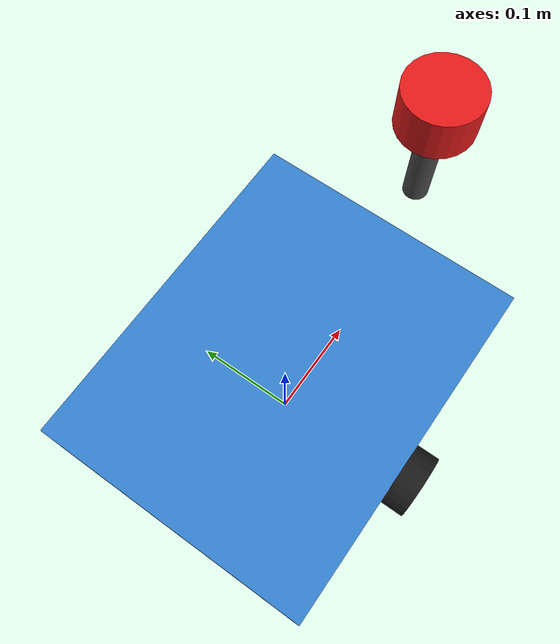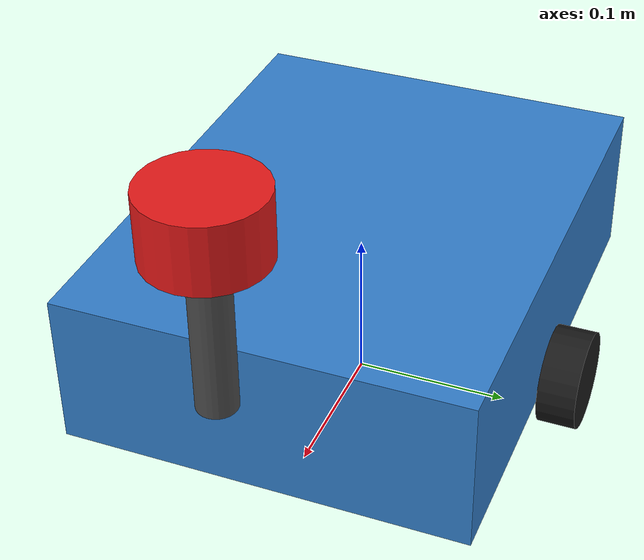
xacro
<?xml version="1.0"?>
<robot name="agv_3wheel" xmlns:xacro="http://www.ros.org/wiki/xacro">

  <!-- Chassis (the main body of the robot) -->
  <xacro:property name="chassis_length" value="0.33"/>    <!-- X dimension -->
  <xacro:property name="chassis_width"  value="0.26"/>    <!-- Y dimension -->
  <xacro:property name="chassis_height" value="0.10"/>    <!-- Z dimension -->
  <xacro:property name="chassis_mass"   value="3.0"/>     <!-- kilograms -->

  <!-- Driven wheels -->
  <xacro:property name="wheel_radius"   value="0.0319"/>  <!-- matches ESP32 firmware -->
  <xacro:property name="wheel_width"    value="0.025"/>   <!-- thickness of the tire -->
  <xacro:property name="wheel_mass"     value="0.10"/>    <!-- kilograms per wheel -->
  <xacro:property name="wheel_base"     value="0.285"/>   <!-- distance between wheels -->
  <xacro:property name="wheel_offset_x" value="0.0"/>     <!-- wheels mounted at chassis center (in X) -->

  <!-- Caster (the passive support wheel at the back) -->
  <xacro:property name="caster_radius"  value="0.015"/>
  <xacro:property name="caster_mass"    value="0.05"/>
  <xacro:property name="caster_offset_x" value="-0.12"/>  <!-- toward the rear -->

  <xacro:property name="base_link_height" value="${wheel_radius}"/>

  <!-- Laser sensor pose on base_link. Matches the real robot's TF. -->
  <xacro:property name="laser_x" value="0.21"/>
  <xacro:property name="laser_y" value="0.0"/>
  <xacro:property name="laser_z" value="0.2162"/>

  <!-- Box inertia: for a rectangular box of mass m and dimensions (x,y,z).
       Formulas from standard rigid-body dynamics textbooks. -->
  <xacro:macro name="box_inertia" params="m x y z">
    <inertial>
      <origin xyz="0 0 0" rpy="0 0 0"/>
      <mass value="${m}"/>
      <inertia
        ixx="${(1.0/12.0) * m * (y*y + z*z)}"
        ixy="0.0" ixz="0.0"
        iyy="${(1.0/12.0) * m * (x*x + z*z)}"
        iyz="0.0"
        izz="${(1.0/12.0) * m * (x*x + y*y)}"/>
    </inertial>
  </xacro:macro>

  <!-- Cylinder inertia: for a cylinder with its axis along Z by default.
       We'll orient wheels via the joint rpy, not by rotating the cylinder. -->
  <xacro:macro name="cylinder_inertia" params="m r h">
    <inertial>
      <origin xyz="0 0 0" rpy="0 0 0"/>
      <mass value="${m}"/>
      <inertia
        ixx="${(1.0/12.0) * m * (3*r*r + h*h)}"
        ixy="0.0" ixz="0.0"
        iyy="${(1.0/12.0) * m * (3*r*r + h*h)}"
        iyz="0.0"
        izz="${(1.0/2.0)  * m * r*r}"/>
    </inertial>
  </xacro:macro>

  <!-- Sphere inertia: for a uniform solid sphere. Used for the caster. -->
  <xacro:macro name="sphere_inertia" params="m r">
    <inertial>
      <origin xyz="0 0 0" rpy="0 0 0"/>
      <mass value="${m}"/>
      <inertia
        ixx="${(2.0/5.0) * m * r*r}"
        ixy="0.0" ixz="0.0"
        iyy="${(2.0/5.0) * m * r*r}"
        iyz="0.0"
        izz="${(2.0/5.0) * m * r*r}"/>
    </inertial>
  </xacro:macro>

  <link name="base_footprint"/>

  <!-- base_link: the main chassis. This is where most plugins attach. -->
  <link name="base_link">
    <visual>
      <origin xyz="0 0 ${chassis_height/2}" rpy="0 0 0"/>
      <geometry>
        <box size="${chassis_length} ${chassis_width} ${chassis_height}"/>
      </geometry>
      <material name="chassis_color">
        <color rgba="0.2 0.5 0.8 1.0"/>  <!-- blue-ish for visibility -->
      </material>
    </visual>

    <collision>
      <origin xyz="0 0 ${chassis_height/2}" rpy="0 0 0"/>
      <geometry>
        <box size="${chassis_length} ${chassis_width} ${chassis_height}"/>
      </geometry>
    </collision>

    <!-- Inertia block using our macro. The box is the chassis dimensions. -->
    <xacro:box_inertia m="${chassis_mass}"
                       x="${chassis_length}"
                       y="${chassis_width}"
                       z="${chassis_height}"/>
  </link>

  <joint name="base_footprint_joint" type="fixed">
    <parent link="base_footprint"/>
    <child link="base_link"/>
    <origin xyz="0 0 ${base_link_height}" rpy="0 0 0"/>
  </joint>

  <xacro:macro name="driven_wheel" params="side_name y_offset">

    <link name="wheel_${side_name}_link">
      <visual>
        <!-- Rotate the cylinder so its axis aligns with the Y axis of the
             robot (the rotation axis of the wheel). Without this rpy, the
             cylinder would stand upright like a drum. -->
        <origin xyz="0 0 0" rpy="${pi/2} 0 0"/>
        <geometry>
          <cylinder radius="${wheel_radius}" length="${wheel_width}"/>
        </geometry>
        <material name="wheel_color">
          <color rgba="0.1 0.1 0.1 1.0"/>  <!-- dark gray/black -->
        </material>
      </visual>

      <collision>
        <origin xyz="0 0 0" rpy="${pi/2} 0 0"/>
        <geometry>
          <cylinder radius="${wheel_radius}" length="${wheel_width}"/>
        </geometry>
      </collision>

      <!-- Cylinder inertia: r=wheel_radius, h=wheel_width. -->
      <xacro:cylinder_inertia m="${wheel_mass}"
                              r="${wheel_radius}"
                              h="${wheel_width}"/>
    </link>

    <joint name="wheel_${side_name}_joint" type="continuous">
      <parent link="base_link"/>
      <child link="wheel_${side_name}_link"/>
      <origin xyz="${wheel_offset_x} ${y_offset} 0" rpy="0 0 0"/>
      <axis xyz="0 1 0"/>
    </joint>

  </xacro:macro>

  <!-- Instantiate the two wheels. Left is at +wheel_base/2 on the Y axis,
       right is at -wheel_base/2. The diff_drive plugin below uses the
       joint names to figure out which is which. -->
  <xacro:driven_wheel side_name="left"  y_offset="${ wheel_base/2}"/>
  <xacro:driven_wheel side_name="right" y_offset="${-wheel_base/2}"/>

  <link name="caster_link">
    <visual>
      <origin xyz="0 0 0" rpy="0 0 0"/>
      <geometry>
        <sphere radius="${caster_radius}"/>
      </geometry>
      <material name="caster_color">
        <color rgba="0.5 0.5 0.5 1.0"/>
      </material>
    </visual>

    <collision>
      <origin xyz="0 0 0" rpy="0 0 0"/>
      <geometry>
        <sphere radius="${caster_radius}"/>
      </geometry>
    </collision>

    <xacro:sphere_inertia m="${caster_mass}" r="${caster_radius}"/>
  </link>

  <joint name="caster_joint" type="fixed">
    <parent link="base_link"/>
    <child link="caster_link"/>
    <origin xyz="${caster_offset_x} 0 ${-base_link_height + caster_radius}"
            rpy="0 0 0"/>
  </joint>

<link name="laser_mast">
  <visual>
    <origin xyz="0 0 ${(laser_z - chassis_height)/2}" rpy="0 0 0"/>
    <geometry>
      <cylinder radius="0.012"
                length="${laser_z - chassis_height}"/>
    </geometry>
    <material name="mast_color">
      <color rgba="0.3 0.3 0.3 1.0"/>
    </material>
  </visual>

  <collision>
    <origin xyz="0 0 ${(laser_z - chassis_height)/2}" rpy="0 0 0"/>
    <geometry>
      <cylinder radius="0.012"
                length="${laser_z - chassis_height}"/>
    </geometry>
  </collision>

  <xacro:cylinder_inertia m="0.1" r="0.012"
                          h="${laser_z - chassis_height}"/>
</link>

<joint name="laser_mast_joint" type="fixed">
  <parent link="base_link"/>
  <child link="laser_mast"/>
  <origin xyz="${laser_x} ${laser_y} ${chassis_height}" rpy="0 0 0"/>
</joint>

  <link name="laser_frame">
    <!-- Give it a tiny visual cylinder so it shows up in RViz. This
         is optional; for production you'd leave it empty or use a mesh. -->
    <visual>
      <origin xyz="0 0 0" rpy="0 0 0"/>
      <geometry>
        <cylinder radius="0.035" length="0.04"/>
      </geometry>
      <material name="laser_color">
        <color rgba="0.9 0.1 0.1 1.0"/>  <!-- red, like an RPLIDAR -->
      </material>
    </visual>

    <collision>
      <origin xyz="0 0 0" rpy="0 0 0"/>
      <geometry>
        <cylinder radius="0.035" length="0.04"/>
      </geometry>
    </collision>

    <!-- Tiny inertia — the laser doesn't need to be physically realistic,
         but every link in a Gazebo robot must have inertia or the sim
         will refuse to load it. -->
    <xacro:cylinder_inertia m="0.05" r="0.035" h="0.04"/>
  </link>

  <joint name="laser_joint" type="fixed">
    <parent link="base_link"/>
    <child link="laser_frame"/>
    <origin xyz="${laser_x} ${laser_y} ${laser_z}" rpy="0 0 0"/>
  </joint>

  <!-- Plugin block attached at the robot level, not to a specific link.
       These systems run on every simulation step. -->
  <gazebo>

    <plugin filename="gz-sim-diff-drive-system"
            name="gz::sim::systems::DiffDrive">
      <left_joint>wheel_left_joint</left_joint>
      <right_joint>wheel_right_joint</right_joint>
      <wheel_separation>${wheel_base}</wheel_separation>
      <wheel_radius>${wheel_radius}</wheel_radius>

      <!-- Velocity limits matching your nav2_params.yaml -->
      <max_linear_velocity>0.20</max_linear_velocity>
      <min_linear_velocity>-0.20</min_linear_velocity>
      <max_angular_velocity>1.0</max_angular_velocity>
      <min_angular_velocity>-1.0</min_angular_velocity>

      <!-- Topic for velocity commands (ROS side after bridge) -->
      <topic>cmd_vel</topic>

      <!-- Odometry output configuration -->
      <odom_topic>odom</odom_topic>
      <odom_publish_frequency>50</odom_publish_frequency>
      <frame_id>odom</frame_id>
      <child_frame_id>base_link</child_frame_id>

      <!-- Publish the odom→base_link TF directly. This replaces the
           manual TF broadcast that udp_bridge_node does on the real robot. -->
      <tf_topic>/tf</tf_topic>
    </plugin>

    <plugin filename="gz-sim-joint-state-publisher-system"
            name="gz::sim::systems::JointStatePublisher">
      <topic>joint_states</topic>
      <joint_name>wheel_left_joint</joint_name>
      <joint_name>wheel_right_joint</joint_name>
    </plugin>

  </gazebo>

  <gazebo reference="laser_frame">
    <sensor name="rplidar_sensor" type="gpu_lidar">
      <!-- Pose is relative to laser_frame; zero because the frame itself
           is already positioned correctly by the URDF joint. -->
      <pose>0 0 0 0 0 0</pose>

      <!-- Topic the scan is published on (before bridging) -->
      <topic>scan</topic>

      <!-- 10 Hz matches your real RPLIDAR A1M8 -->
      <update_rate>10</update_rate>

      <!-- Frame ID the LaserScan message will carry. Must match the
           URDF link name so TF lookups work in RViz and Nav2. -->
      <gz_frame_id>laser_frame</gz_frame_id>

      <ray>
        <scan>
          <horizontal>
            <!-- 360 samples over a full 2π revolution = 1° per sample,
                 roughly matching the A1M8's default resolution. -->
            <samples>360</samples>
            <resolution>1</resolution>
            <min_angle>-3.14159</min_angle>
            <max_angle> 3.14159</max_angle>
          </horizontal>
        </scan>
        <range>
          <!-- Matches the A1M8's specified range -->
          <min>0.15</min>
          <max>12.0</max>
          <resolution>0.01</resolution>
        </range>
        <!-- No noise for now. Once everything works, you can add a
             Gaussian noise block here to make the sim more realistic. -->
      </ray>

      <always_on>1</always_on>

      <!-- Visualize the scan rays in the Gazebo GUI while testing.
           Turn this off for performance once you trust the sensor works. -->
      <visualize>true</visualize>
    </sensor>
  </gazebo>

  <gazebo reference="caster_link">
    <mu1>0.001</mu1>
    <mu2>0.001</mu2>
    <kp>1000000.0</kp>   <!-- stiffness: resist penetration -->
    <kd>1.0</kd>         <!-- damping: absorb impact energy -->
  </gazebo>

  <gazebo reference="wheel_left_link">
    <mu1>1.0</mu1>
    <mu2>1.0</mu2>
    <kp>1000000.0</kp>
    <kd>1.0</kd>
  </gazebo>

  <gazebo reference="wheel_right_link">
    <mu1>1.0</mu1>
    <mu2>1.0</mu2>
    <kp>1000000.0</kp>
    <kd>1.0</kd>
  </gazebo>

  <gazebo reference="base_link">
    <material>Gazebo/Blue</material>
  </gazebo>

  <gazebo reference="wheel_left_link">
    <material>Gazebo/Black</material>
  </gazebo>

  <gazebo reference="wheel_right_link">
    <material>Gazebo/Black</material>
  </gazebo>

  <gazebo reference="laser_frame">
    <material>Gazebo/Red</material>
  </gazebo>

</robot>
